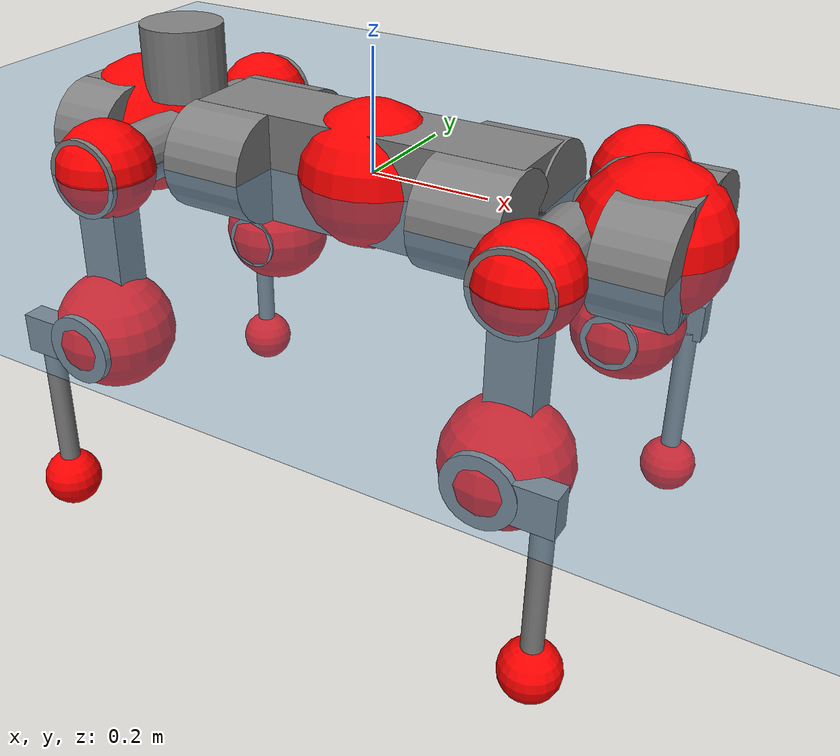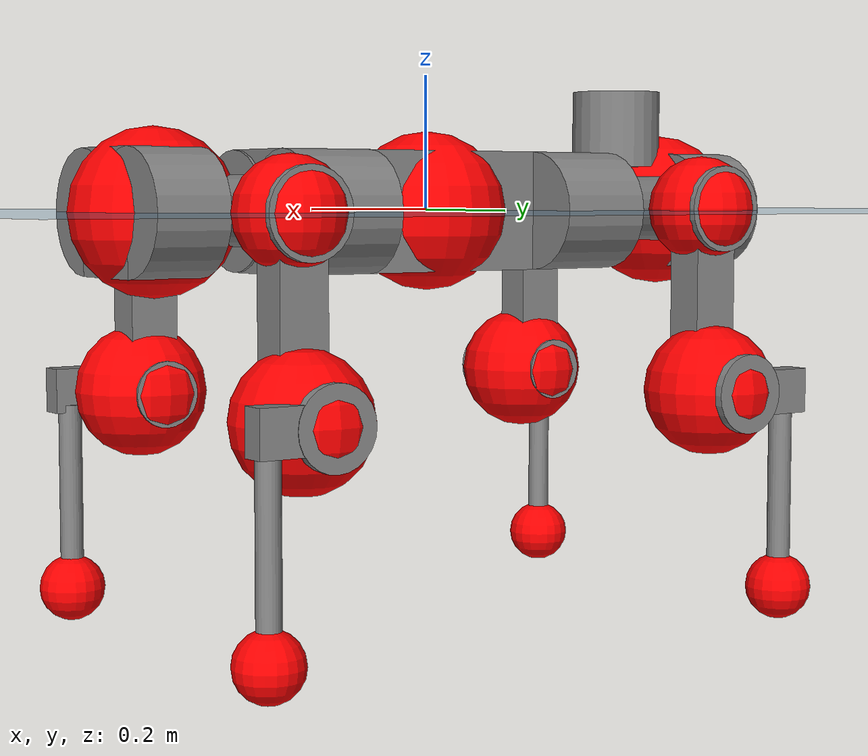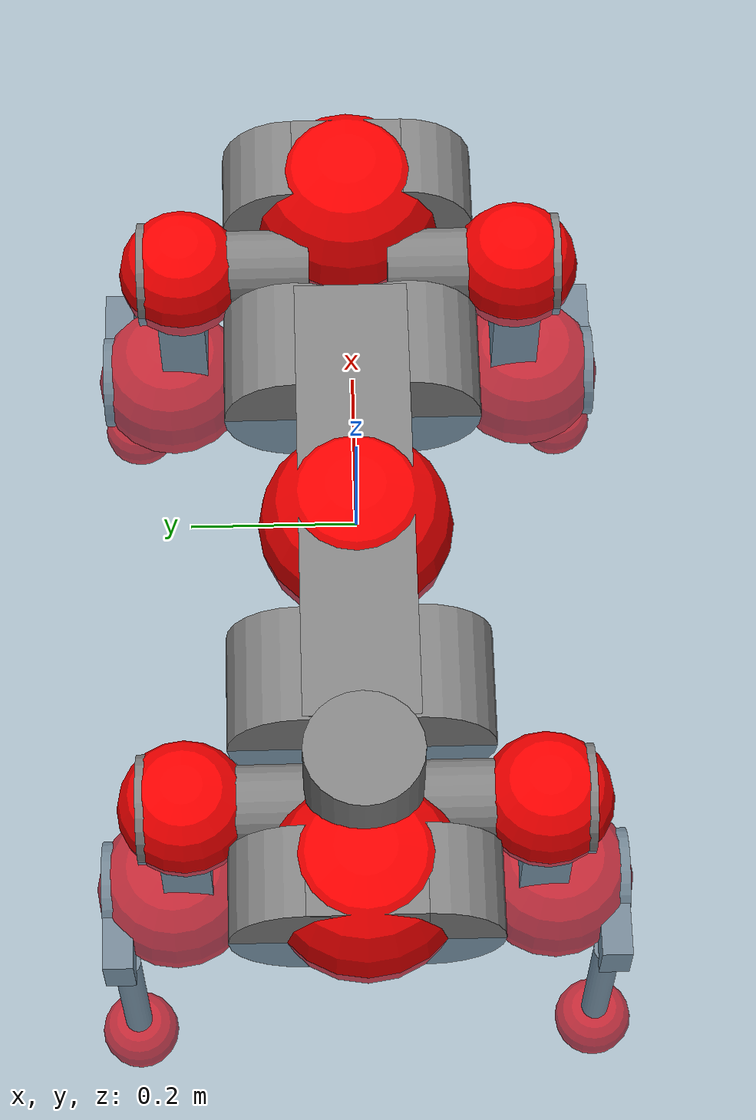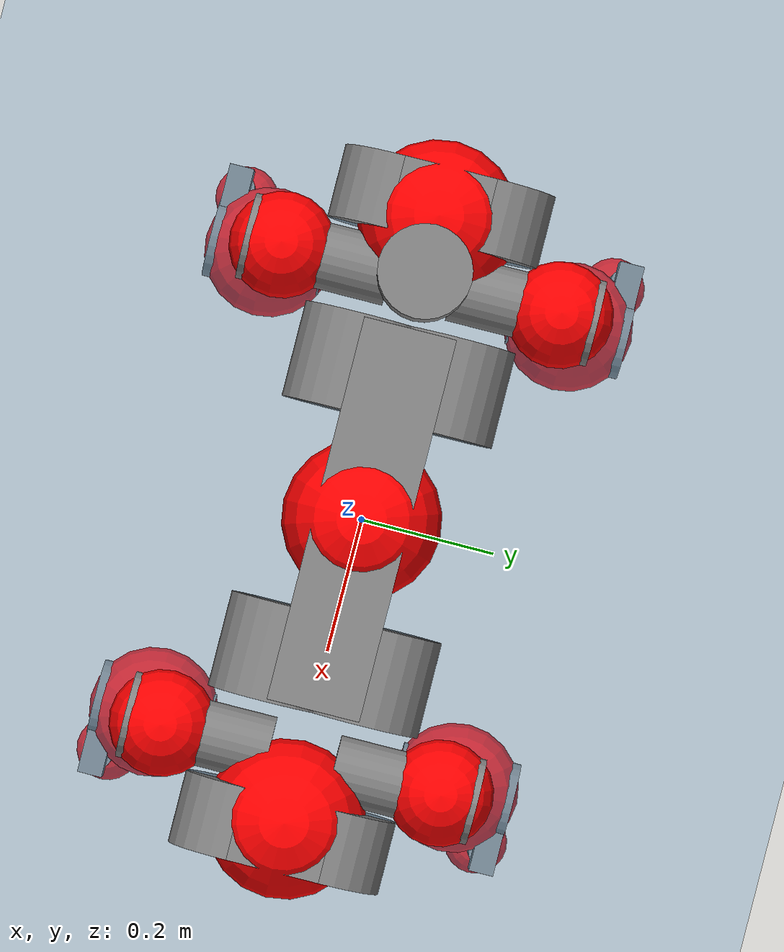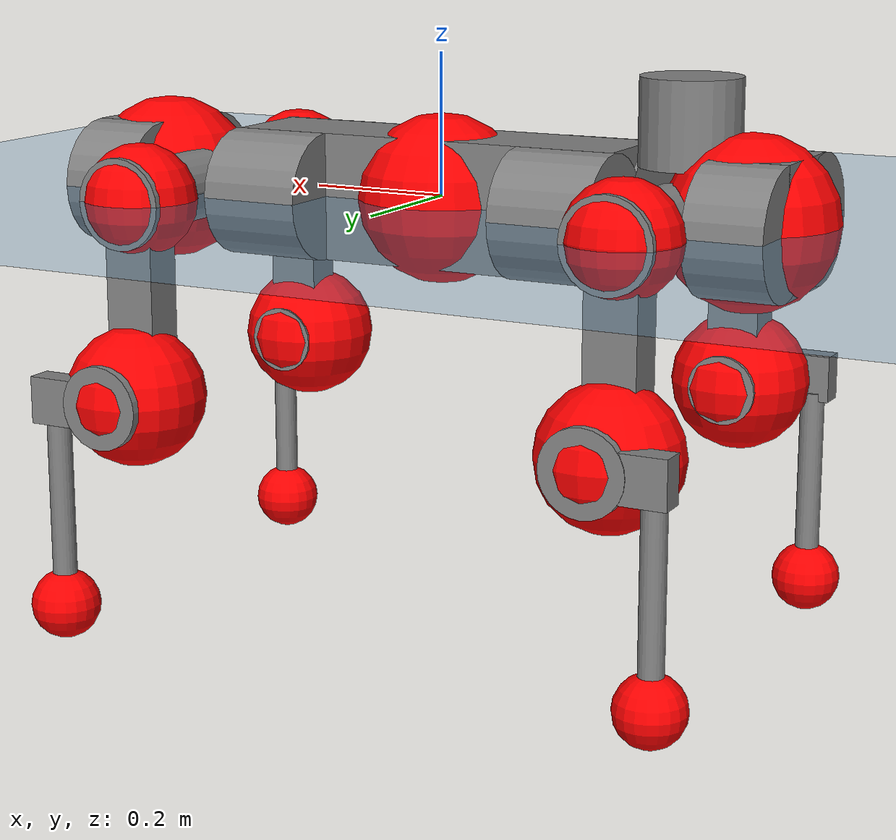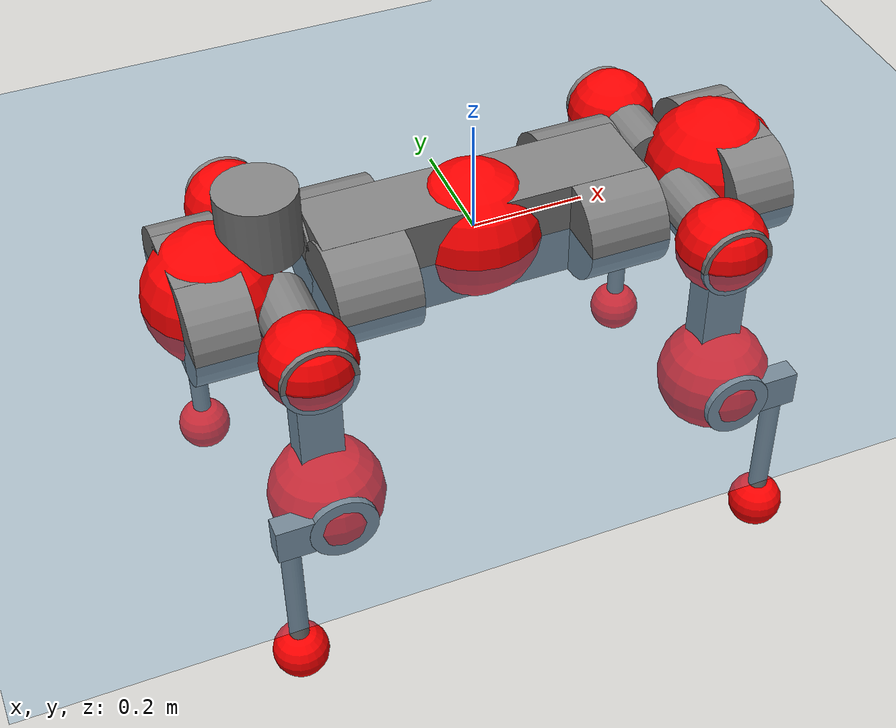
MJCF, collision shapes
<mujoco model="anymal_c">
  <compiler angle="radian" assetdir="assets" balanceinertia="true" inertiafromgeom="false"/>

  <option timestep="0.005" density="1.2" viscosity="2e-05"/>

  <size nkey="1"/>

  <visual>
    <quality shadowsize="8192"/>
    <map shadowclip="0.5"/>
  </visual>

  <default>
    <default class="/">
      <material specular="0" shininess="0.25"/>
      <geom contype="0" conaffinity="0" group="1" solref="-1000 -80"/>
      <site size="0.01 0.005 0.005" group="5"/>
      <general forcelimited="true" forcerange="-80 80" biastype="affine" gainprm="80" biasprm="0 -80 -2"/>
      <default class="anymal_c">
        <joint armature="0.01" damping="0.01" frictionloss="0.1"/>
        <default class="visual">
          <geom type="mesh" group="2"/>
          <default class="visual_zflip"/>
        </default>
        <default class="collision">
          <geom type="cylinder" group="3"/>
          <default class="foot">
            <geom size="0.03 0 0" type="sphere" condim="6" priority="1" friction="0.8 0.02 0.01" solimp="0.015 1 0.03"/>
          </default>
        </default>
      </default>
      <default class="reward_collision_sphere">
        <geom group="5" rgba="1 0 0 1"/>
      </default>
    </default>
  </default>

  <asset>
    <texture type="skybox" colorspace="auto" name="//unnamed_texture_0" builtin="gradient" rgb1="0.95 0.95 0.95" rgb2="0.95 0.95 0.95" width="100" height="600"/>
    <texture type="2d" colorspace="auto" name="texplane" builtin="checker" rgb1="0.345 0.575 0.748" rgb2="0.345 0.575 0.748" markrgb="1 1 1" width="512" height="512"/>
    <texture type="2d" colorspace="linear" name="base" file="base.png"/>
    <texture type="2d" colorspace="linear" name="top_shell" file="top_shell.png"/>
    <texture type="2d" colorspace="linear" name="bottom_shell" file="bottom_shell.png"/>
    <texture type="2d" colorspace="linear" name="remote" file="remote.png"/>
    <texture type="2d" colorspace="linear" name="hatch" file="hatch.png"/>
    <texture type="2d" colorspace="linear" name="handle" file="handle.png"/>
    <texture type="2d" colorspace="linear" name="face" file="face.png"/>
    <texture type="2d" colorspace="linear" name="battery" file="battery.png"/>
    <texture type="2d" colorspace="linear" name="lidar_cage" file="lidar_cage.png"/>
    <texture type="2d" colorspace="linear" name="depth_camera" file="depth_camera.png"/>
    <texture type="2d" colorspace="linear" name="wide_angle_camera" file="wide_angle_camera.png"/>
    <texture type="2d" colorspace="linear" name="lidar" file="lidar.png"/>
    <texture type="2d" colorspace="linear" name="drive" file="drive.png"/>
    <texture type="2d" colorspace="linear" name="hip_l" file="hip_l.png"/>
    <texture type="2d" colorspace="linear" name="shank_l" file="shank_l.png"/>
    <texture type="2d" colorspace="linear" name="foot" file="foot.png"/>
    <texture type="2d" colorspace="linear" name="thigh" file="thigh.png"/>
    <texture type="2d" colorspace="linear" name="shank_r" file="shank_r.png"/>
    <texture type="2d" colorspace="linear" name="hip_r" file="hip_r.png"/>
    <material name="MatPlane" class="/" texture="texplane" texuniform="true" texrepeat="2 2" specular="0.9" shininess="0.5"/>
    <material name="black_plastic" class="/" rgba="0.007 0.007 0.007 1"/>
    <material name="green" class="/" rgba="0.052 0.178 0.033 1"/>
    <material name="red" class="/" rgba="0.178 0.006 0.005 1"/>
    <material name="yellow" class="/" rgba="0.178 0.119 0.006 1"/>
    <material name="lwl" class="/" rgba="0.8 0.8 0.8 1"/>
    <material name="base" class="/" texture="base"/>
    <material name="top_shell" class="/" texture="top_shell"/>
    <material name="bottom_shell" class="/" texture="bottom_shell"/>
    <material name="hip_l" class="/" texture="hip_l"/>
    <material name="thigh" class="/" texture="thigh"/>
    <material name="shank_l" class="/" texture="shank_l"/>
    <material name="foot" class="/" texture="foot"/>
    <material name="hip_r" class="/" texture="hip_r"/>
    <material name="shank" class="/" texture="shank_r"/>
    <material name="hatch" class="/" texture="hatch"/>
    <material name="remote" class="/" texture="remote"/>
    <material name="handle" class="/" texture="handle"/>
    <material name="face" class="/" texture="face"/>
    <material name="depth_camera" class="/" texture="depth_camera"/>
    <material name="wide_angle_camera" class="/" texture="wide_angle_camera"/>
    <material name="battery" class="/" texture="battery"/>
    <material name="lidar_cage" class="/" texture="lidar_cage"/>
    <material name="lidar" class="/" texture="lidar"/>
    <material name="drive" class="/" texture="drive"/>
    <mesh name="base_0" class="/" file="base_0.obj"/>
    <mesh name="base_1" class="/" file="base_1.obj"/>
    <mesh name="base_2" class="/" file="base_2.obj"/>
    <mesh name="base_3" class="/" file="base_3.obj"/>
    <mesh name="base_4" class="/" file="base_4.obj"/>
    <mesh name="base_5" class="/" file="base_5.obj"/>
    <mesh name="top_shell" class="/" file="top_shell.obj"/>
    <mesh name="bottom_shell" class="/" file="bottom_shell.obj"/>
    <mesh name="remote" class="/" file="remote.obj"/>
    <mesh name="handle" class="/" file="handle.obj"/>
    <mesh name="face" class="/" file="face.obj"/>
    <mesh name="wide_angle_camera" class="/" file="wide_angle_camera.obj"/>
    <mesh name="depth_camera" class="/" file="depth_camera.obj"/>
    <mesh name="battery" class="/" file="battery.obj"/>
    <mesh name="lidar_cage" class="/" file="lidar_cage.obj"/>
    <mesh name="lidar" class="/" file="lidar.obj"/>
    <mesh name="drive" class="/" file="drive.obj"/>
    <mesh name="hip_l" class="/" file="hip_l.obj"/>
    <mesh name="thigh" class="/" file="thigh.obj"/>
    <mesh name="shank_l" class="/" file="shank_l.obj"/>
    <mesh name="foot" class="/" file="foot.obj"/>
    <mesh name="hip_r" class="/" file="hip_r.obj"/>
    <mesh name="hatch" class="/" file="hatch.obj"/>
    <mesh name="shank_r" class="/" file="shank_r.obj"/>
  </asset>

  <worldbody>
    <geom name="floor" class="/" size="100 100 0.125" type="plane" group="0" material="MatPlane"/>
    <light name="toplight_shadow" class="/" pos="0 0 5" dir="0.0990148 0.0990148 -0.990148" type="directional" ambient="0.04 0.04 0.04" diffuse="0.55 0.55 0.55" specular="0.12 0.12 0.12"/>
    <light name="toplight_fill" class="/" pos="0 0 5" dir="0.0990148 0.0990148 -0.990148" type="directional" castshadow="false" ambient="0.04 0.04 0.04" diffuse="0.3 0.3 0.3" specular="0.08 0.08 0.08"/>
    <body name="trunk" childclass="anymal_c" pos="-0.00104925 0.000452405 -0.00188891" quat="0.999999 -0.000434449 0.000141273 0.00104744">
      <inertial pos="0.00180397 0.00264461 0.0443712" quat="0.500364 0.493316 0.496649 0.509524" mass="18.2573" diaginertia="0.698581 0.644457 0.176797"/>
      <joint name="//unnamed_joint_0" type="free" armature="0" damping="0" frictionloss="0"/>
      <geom name="//unnamed_geom_1" class="visual" material="green" mesh="base_0"/>
      <geom name="//unnamed_geom_2" class="visual" material="yellow" mesh="base_1"/>
      <geom name="//unnamed_geom_3" class="visual" material="red" mesh="base_2"/>
      <geom name="//unnamed_geom_4" class="visual" material="black_plastic" mesh="base_3"/>
      <geom name="//unnamed_geom_5" class="visual" material="lwl" mesh="base_4"/>
      <geom name="//unnamed_geom_6" class="visual" material="base" mesh="base_5"/>
      <geom name="trunk_1" class="collision" size="0.287027 0.0692824 0.0890774" type="box"/>
      <geom name="trunk_2" class="collision" size="0.0890774 0.0717568" pos="0.219906 0.0701011 0" quat="0.707107 0 0.707107 0"/>
      <geom name="trunk_3" class="collision" size="0.0890774 0.0717568" pos="-0.219906 0.0701011 0" quat="0.707107 0 0.707107 0"/>
      <geom name="trunk_4" class="collision" size="0.0890774 0.0717568" pos="0.219906 -0.0701011 0" quat="0.707107 0 0.707107 0"/>
      <geom name="trunk_5" class="collision" size="0.0890774 0.0717568" pos="-0.219906 -0.0701011 0" quat="0.707107 0 0.707107 0"/>
      <geom name="//unnamed_geom_12" class="visual" material="top_shell" mesh="top_shell"/>
      <geom name="//unnamed_geom_13" class="visual" material="bottom_shell" mesh="bottom_shell"/>
      <geom name="//unnamed_geom_14" class="visual" material="remote" mesh="remote"/>
      <geom name="//unnamed_geom_15" class="visual" material="handle" mesh="handle"/>
      <geom name="//unnamed_geom_16" class="visual" pos="0.419084 0 0" quat="1 0 0 0" material="face" mesh="face"/>
      <geom name="trunk_6" class="collision" size="0.0544362 0.0692824 0.0890774" pos="0.474693 0 0" type="box"/>
      <geom name="//unnamed_geom_18" class="collision" size="0.0890774 0.0544362" pos="0.474693 0.0701011 0" quat="0.707107 0 0.707107 0"/>
      <geom name="//unnamed_geom_19" class="collision" size="0.0890774 0.0544362" pos="0.474693 -0.0701011 0" quat="0.707107 0 0.707107 0"/>
      <geom name="//unnamed_geom_20" class="visual" pos="0.466754 0 -0.0275241" quat="0.965926 0 0.258819 0" material="depth_camera" mesh="depth_camera"/>
      <geom name="//unnamed_geom_21" class="visual" pos="0.518674 0 0.0143224" material="wide_angle_camera" mesh="wide_angle_camera"/>
      <geom name="//unnamed_geom_22" class="visual_zflip" pos="-0.419084 0 0" quat="0 0 0 1" material="face" mesh="face"/>
      <geom name="trunk_7" class="collision" size="0.0544362 0.0692824 0.0890774" pos="-0.474693 0 0" quat="0 0 0 1" type="box"/>
      <geom name="//unnamed_geom_24" class="collision" size="0.0890774 0.0544362" pos="-0.474693 -0.0701011 0" quat="0 -0.707107 0 0.707107"/>
      <geom name="//unnamed_geom_25" class="collision" size="0.0890774 0.0544362" pos="-0.474693 0.0701011 0" quat="0 -0.707107 0 0.707107"/>
      <geom name="//unnamed_geom_26" class="visual" pos="-0.466754 0 -0.0275241" quat="0 -0.258819 0 0.965926" material="depth_camera" mesh="depth_camera"/>
      <geom name="//unnamed_geom_27" class="visual_zflip" pos="-0.518674 0 0.0143224" quat="0 0 0 1" material="wide_angle_camera" mesh="wide_angle_camera"/>
      <geom name="//unnamed_geom_28" class="visual" material="battery" mesh="battery"/>
      <geom name="//unnamed_geom_29" class="visual" pos="0 0.0764419 0.0282062" quat="0.683013 -0.183013 0.183013 0.683013" material="depth_camera" mesh="depth_camera"/>
      <geom name="//unnamed_geom_30" class="visual" pos="0 -0.0764419 0.0282062" quat="0.683013 0.183013 0.183013 -0.683013" material="depth_camera" mesh="depth_camera"/>
      <geom name="//unnamed_geom_31" class="visual" pos="-0.368026 0 0.0703206" quat="1 0 0 0" material="lidar_cage" mesh="lidar_cage"/>
      <geom name="trunk_8" class="collision" size="0.0692824 0.0593849" pos="-0.368026 0 0.127725"/>
      <geom name="//unnamed_geom_33" class="visual" pos="-0.368026 -3.77804e-06 0.136049" quat="0.707107 0 0 -0.707107" material="lidar" mesh="lidar"/>
      <geom name="//unnamed_geom_34" class="visual" pos="0.303217 0.104134 7.71096e-10" quat="0.258819 0.965926 0 0" material="drive" mesh="drive"/>
      <geom name="//unnamed_geom_35" class="visual" pos="0.303217 -0.104134 -7.71096e-10" quat="0.258819 -0.965926 0 0" material="drive" mesh="drive"/>
      <geom name="//unnamed_geom_36" class="visual" pos="-0.303217 0.104134 -7.71096e-10" quat="0 0 0.965926 -0.258819" material="drive" mesh="drive"/>
      <geom name="//unnamed_geom_37" class="visual" pos="-0.303217 -0.104134 7.71096e-10" quat="0 0 -0.965926 -0.258819" material="drive" mesh="drive"/>
      <geom name="//unnamed_geom_38" class="visual" pos="0.117283 0 0.0698422" quat="1 0 0 0" material="hatch" mesh="hatch"/>
      <geom name="//unnamed_geom_39" class="reward_collision_sphere" size="0.11877"/>
      <geom name="//unnamed_geom_40" class="reward_collision_sphere" size="0.11877" pos="0.454977 0 0"/>
      <geom name="//unnamed_geom_41" class="reward_collision_sphere" size="0.11877" pos="-0.454977 0 0"/>
      <site name="imu" pos="0.248466 0.0211276 0.030232" size="0.00989749"/>
      <camera name="track" pos="0 -2.00289 0" quat="0.707107 0.707107 0 0" mode="trackcom"/>
      <camera name="ego_camera" pos="0.454977 0 -0.0382697" quat="-0.5 -0.5 0.5 0.5"/>
      <body name="LF_HIP" pos="0.303847 0.106015 0.00261943" quat="0.258966 0.965886 -4.59547e-05 0.000137989">
        <inertial pos="0.0548838 -0.0144283 -0.00968603" quat="-0.124547 0.708594 -0.144592 0.67932" mass="2.62023" diaginertia="0.00620611 0.00477381 0.00255076"/>
        <joint name="LF_HAA" pos="0 0 0" axis="0.999933 0.0100433 -0.00578603" range="-0.729751 0.535882" armature="0.0099303" damping="0" frictionloss="0.110435"/>
        <geom name="//unnamed_geom_42" class="visual" pos="0 4.53601e-05 -7.45036e-06" quat="0.258819 -0.965926 0 0" material="hip_l" mesh="hip_l"/>
        <geom name="//unnamed_geom_43" class="visual" pos="0.0605625 -0.0732419 -0.0419556" quat="0.183013 -0.683013 0.683013 0.183013" material="drive" mesh="drive"/>
        <geom name="//unnamed_geom_44" class="collision" size="0.0494874 0.0692824" pos="0.0605625 -0.0119771 -0.00660631" quat="-0.353553 -0.612372 0.612372 -0.353553"/>
        <body name="LF_THIGH" pos="0.0581248 -0.0705914 -0.0379181" quat="0.182988 -0.682961 0.683041 0.183123">
          <inertial pos="0.031439 0.000684024 -0.234478" quat="0.993236 -0.00552823 -0.0776479 0.0861485" mass="2.87241" diaginertia="0.0307293 0.0291517 0.00313246"/>
          <joint name="LF_HFE" pos="0 0 0" axis="0.999994 0.00295413 -0.00174152" range="-3.19503 3.13771" armature="0.00864242" damping="0.021709" frictionloss="0.0984342"/>
          <geom name="//unnamed_geom_45" class="visual" pos="0.000191329 3.0149e-07 0" quat="0.707107 0 0 -0.707107" material="thigh" mesh="thigh"/>
          <geom name="//unnamed_geom_46" class="collision" size="0.0643337 0.03959" pos="0.0404424 0 0" quat="0.5 0.5 -0.5 -0.5"/>
          <geom name="//unnamed_geom_47" class="collision" size="0.0371156 0.0296925 0.139865" pos="0.0303318 0 -0.135201" quat="0.707107 0 0 -0.707107" type="box"/>
          <geom name="//unnamed_geom_48" class="visual" pos="0.101409 0 -0.272672" quat="1 0 0 0" material="drive" mesh="drive"/>
          <geom name="//unnamed_geom_49" class="collision" size="0.0494874 0.0692824" pos="0.0306351 0 -0.272672" quat="0.707107 0 0.707107 0"/>
          <geom name="//unnamed_geom_50" class="reward_collision_sphere" size="0.0791799" pos="0.0252765 0 0"/>
          <body name="LF_SHANK" pos="0.101683 0.000517499 -0.274" quat="1 -1.67038e-05 5.0898e-05 1.89255e-06">
            <inertial pos="0.00418699 -0.0634834 -0.0774938" quat="0.993117 -0.114474 -0.00269453 -0.0246504" mass="0.575822" diaginertia="0.0104464 0.00920753 0.000894011"/>
            <joint name="LF_KFE" pos="0 0 0" axis="0.999996 0.00022033 -0.00285175" range="-3.16903 3.18993" armature="0.00988422" damping="0.0109236" frictionloss="0.107435"/>
            <geom name="//unnamed_geom_51" class="visual" pos="6.23883e-05 0.000332658 0" quat="0.707107 0 0 -0.707107" material="shank_l" mesh="shank_l"/>
            <geom name="LF_kfe_act" class="collision" size="0.0593849 0.019795" pos="0.0202212 0 0" quat="0.5 0.5 -0.5 -0.5"/>
            <geom name="//unnamed_geom_53" class="collision" size="0.0569096 0.033404 0.0188052" pos="0.0202212 -0.057582 0" quat="0.5 0.5 -0.5 -0.5" type="box"/>
            <geom name="//unnamed_geom_54" class="visual" pos="0.0131943 -0.0879698 -0.32335" quat="0.382683 0 0 -0.92388" material="foot" mesh="foot"/>
            <geom name="LF_calf" class="collision" size="0.0173206 0.139804" pos="0.0131943 -0.088077 -0.161675" quat="0.707107 0 0 -0.707107"/>
            <geom name="LF_foot" class="foot" size="0.0292256" pos="0.0131943 -0.088077 -0.301824" quat="0.707107 0 0 -0.707107"/>
            <geom name="//unnamed_geom_57" class="reward_collision_sphere" size="0.0989749" pos="-0.050553 0 0"/>
            <geom name="//unnamed_geom_58" class="reward_collision_sphere" size="0.0494874" pos="0.0131943 -0.088077 -0.301824"/>
            <site name="LF_foot" class="foot" pos="0.0131943 -0.088077 -0.301824" quat="0.707107 0 0 -0.707107" size="0.00989749"/>
          </body>
        </body>
      </body>
      <body name="RF_HIP" pos="0.301527 -0.103667 0.00238243" quat="0.258161 -0.966102 0.00013314 2.40909e-05">
        <inertial pos="0.0560031 0.0155623 -0.0086524" quat="0.141947 0.676817 0.13347 0.709898" mass="2.73363" diaginertia="0.00608188 0.00490067 0.00258334"/>
        <joint name="RF_HAA" pos="0 0 0" axis="0.999955 -0.00120366 -0.00939086" range="-0.531506 0.678002" armature="0.0099363" damping="0" frictionloss="0.112493"/>
        <geom name="//unnamed_geom_59" class="visual" pos="0 -4.53597e-05 -7.45034e-06" quat="0.258819 0.965926 0 0" material="hip_r" mesh="hip_r"/>
        <geom name="//unnamed_geom_60" class="visual" pos="0.0605625 0.0732419 -0.0419556" quat="0.183013 0.683013 0.683013 -0.183013" material="drive" mesh="drive"/>
        <geom name="//unnamed_geom_61" class="collision" size="0.0494874 0.0692824" pos="0.0605625 0.0119771 -0.00660631" quat="-0.353553 0.612372 0.612372 0.353553"/>
        <body name="RF_THIGH" pos="0.0610552 0.0700535 -0.0410326" quat="0.183544 0.68286 0.683153 -0.182526">
          <inertial pos="0.0292476 0.000510636 -0.235208" quat="0.992896 -0.00493389 -0.0810224 0.0869991" mass="3.09408" diaginertia="0.0319778 0.0291795 0.00344277"/>
          <joint name="RF_HFE" pos="0 0 0" axis="1 -0.000667721 0.000354867" stiffness="0.0142738" range="-3.14693 3.08793" armature="0.00894341" damping="0.00553344" frictionloss="0.0851299"/>
          <geom name="//unnamed_geom_62" class="visual" pos="0.000191329 3.0149e-07 0" quat="0.707107 0 0 -0.707107" material="thigh" mesh="thigh"/>
          <geom name="//unnamed_geom_63" class="collision" size="0.0643337 0.03959" pos="0.0404424 0 0" quat="0.5 0.5 0.5 0.5"/>
          <geom name="//unnamed_geom_64" class="collision" size="0.0371156 0.0296925 0.139865" pos="0.0303318 0 -0.135201" quat="0.707107 0 0 0.707107" type="box"/>
          <geom name="//unnamed_geom_65" class="visual" pos="0.101409 0 -0.272672" quat="1 0 0 0" material="drive" mesh="drive"/>
          <geom name="//unnamed_geom_66" class="collision" size="0.0494874 0.0692824" pos="0.0306351 0 -0.272672" quat="0.707107 0 0.707107 0"/>
          <geom name="//unnamed_geom_67" class="reward_collision_sphere" size="0.0791799" pos="0.0252765 0 0"/>
          <body name="RF_SHANK" pos="0.0990575 0.000133184 -0.273296" quat="1 5.19517e-05 -9.18838e-05 -0.000223929">
            <inertial pos="0.00584918 0.0589722 -0.0741223" quat="0.992565 0.118146 -0.00800405 0.0281552" mass="0.559804" diaginertia="0.0105159 0.00932171 0.000841382"/>
            <joint name="RF_KFE" pos="0 0 0" axis="0.999995 0.00247874 -0.00186613" range="-3.14076 3.15764" armature="0.00952959" damping="0" frictionloss="0.0884276"/>
            <geom name="//unnamed_geom_68" class="visual" pos="6.23879e-05 -0.000332657 0" quat="0.707107 0 0 0.707107" material="shank" mesh="shank_r"/>
            <geom name="RF_kfe_act" class="collision" size="0.0593849 0.019795" pos="0.0202212 0 0" quat="0.5 0.5 0.5 0.5"/>
            <geom name="//unnamed_geom_70" class="collision" size="0.0569096 0.033404 0.0188052" pos="0.0202212 0.057582 0" quat="0.5 0.5 0.5 0.5" type="box"/>
            <geom name="//unnamed_geom_71" class="visual" pos="0.0131943 0.0879698 -0.32335" quat="0.382683 0 0 0.92388" material="foot" mesh="foot"/>
            <geom name="RF_calf" class="collision" size="0.0173206 0.139804" pos="0.0131943 0.088077 -0.161675" quat="0.707107 0 0 0.707107"/>
            <geom name="RF_foot" class="foot" size="0.0273082" pos="0.0131943 0.088077 -0.301824" quat="0.707107 0 0 0.707107"/>
            <geom name="//unnamed_geom_74" class="reward_collision_sphere" size="0.0989749" pos="-0.050553 0 0"/>
            <geom name="//unnamed_geom_75" class="reward_collision_sphere" size="0.0494874" pos="0.0131943 0.088077 -0.301824"/>
            <site name="RF_foot" class="foot" pos="0.0131943 0.088077 -0.301824" quat="0.707107 0 0 0.707107" size="0.00989749"/>
          </body>
        </body>
      </body>
      <body name="LH_HIP" pos="-0.303159 0.102035 0.00324364" quat="-3.62937e-05 -0.000358346 0.966014 -0.258491">
        <inertial pos="0.0568691 0.0127171 -0.00983467" quat="0.13937 0.680089 0.122252 0.709302" mass="2.64501" diaginertia="0.00583701 0.00488854 0.00246394"/>
        <joint name="LH_HAA" pos="0 0 0" axis="0.999904 -0.0100601 0.00949948" range="-0.544918 0.768642" armature="0.0111844" damping="0.0047057" frictionloss="0.099124"/>
        <geom name="//unnamed_geom_76" class="visual" pos="0 -4.53597e-05 -7.45034e-06" quat="-0.258819 -0.965926 0 0" material="hip_r" mesh="hip_r"/>
        <geom name="//unnamed_geom_77" class="visual" pos="0.0605625 0.0732419 -0.0419556" quat="0.183013 0.683013 0.683013 -0.183013" material="drive" mesh="drive"/>
        <geom name="//unnamed_geom_78" class="collision" size="0.0494874 0.0692824" pos="0.0605625 0.0119771 -0.00660631" quat="-0.353553 0.612372 0.612372 0.353553"/>
        <body name="LH_THIGH" pos="0.0603439 0.0703076 -0.0400582" quat="0.184302 0.683261 0.682613 -0.182282">
          <inertial pos="0.0327388 -0.00296684 -0.236498" quat="0.99272 -0.00505739 -0.0807652 0.0892114" mass="3.04403" diaginertia="0.0333978 0.0302198 0.00352768"/>
          <joint name="LH_HFE" pos="0 0 0" axis="0.999952 0.00209763 0.00959459" stiffness="0.00752847" range="-3.19748 3.13164" armature="0.0098835" damping="0.00227755" frictionloss="0.10837"/>
          <geom name="//unnamed_geom_79" class="visual" pos="0.000191329 3.0149e-07 0" quat="0.707107 0 0 -0.707107" material="thigh" mesh="thigh"/>
          <geom name="//unnamed_geom_80" class="collision" size="0.0643337 0.03959" pos="0.0404424 0 0" quat="0.5 0.5 -0.5 -0.5"/>
          <geom name="//unnamed_geom_81" class="collision" size="0.0371156 0.0296925 0.139865" pos="0.0303318 0 -0.135201" quat="0.707107 0 0 -0.707107" type="box"/>
          <geom name="//unnamed_geom_82" class="visual" pos="0.101409 0 -0.272672" quat="1 0 0 0" material="drive" mesh="drive"/>
          <geom name="//unnamed_geom_83" class="collision" size="0.0494874 0.0692824" pos="0.0306351 0 -0.272672" quat="0.707107 0 0.707107 0"/>
          <geom name="//unnamed_geom_84" class="reward_collision_sphere" size="0.0791799" pos="0.0252765 0 0"/>
          <body name="LH_SHANK" pos="0.0992239 -0.000978386 -0.274354" quat="0.999999 0.00113125 0.000795613 -0.000555879">
            <inertial pos="0.00353267 0.0639397 -0.0788001" quat="0.992942 0.117094 -0.00918294 0.016473" mass="0.546721" diaginertia="0.0103226 0.00872344 0.000884078"/>
            <joint name="LH_KFE" pos="0 0 0" axis="0.999999 -0.00143908 -0.000726469" range="-3.1614 3.11302" armature="0.011116" damping="0.00189692" frictionloss="0.0987892"/>
            <geom name="//unnamed_geom_85" class="visual" pos="6.23879e-05 -0.000332657 0" quat="-0.707107 0 0 -0.707107" material="shank" mesh="shank_r"/>
            <geom name="LH_kfe_act" class="collision" size="0.0593849 0.019795" pos="0.0202212 0 0" quat="0.5 0.5 -0.5 -0.5"/>
            <geom name="//unnamed_geom_87" class="collision" size="0.0569096 0.033404 0.0188052" pos="0.0202212 0.057582 0" quat="0.5 0.5 -0.5 -0.5" type="box"/>
            <geom name="//unnamed_geom_88" class="visual" pos="0.0131943 0.0879698 -0.32335" quat="-0.382683 0 0 -0.92388" material="foot" mesh="foot"/>
            <geom name="LH_calf" class="collision" size="0.0173206 0.139804" pos="0.0131943 0.088077 -0.161675" quat="0.707107 0 0 -0.707107"/>
            <geom name="LH_foot" class="foot" size="0.0322526" pos="0.0131943 0.088077 -0.301824" quat="0.707107 0 0 -0.707107"/>
            <geom name="//unnamed_geom_91" class="reward_collision_sphere" size="0.0989749" pos="-0.050553 0 0"/>
            <geom name="//unnamed_geom_92" class="reward_collision_sphere" size="0.0494874" pos="0.0131943 0.088077 -0.301824"/>
            <site name="LH_foot" class="foot" pos="0.0131943 0.088077 -0.301824" quat="0.707107 0 0 -0.707107" size="0.00989749"/>
          </body>
        </body>
      </body>
      <body name="RH_HIP" pos="-0.301668 -0.104681 0.00314733" quat="-0.000215043 -0.000201104 -0.966018 -0.258473">
        <inertial pos="0.054514 -0.0180003 -0.00822378" quat="-0.118775 0.715517 -0.132266 0.675598" mass="2.71496" diaginertia="0.00650636 0.00508308 0.00277892"/>
        <joint name="RH_HAA" pos="0 0 0" axis="0.999975 -0.0043282 0.0056086" range="-0.765961 0.488" armature="0.00988942" damping="0.0106413" frictionloss="0.106342"/>
        <geom name="//unnamed_geom_93" class="visual" pos="0 4.53601e-05 -7.45036e-06" quat="-0.258819 0.965926 0 0" material="hip_l" mesh="hip_l"/>
        <geom name="//unnamed_geom_94" class="visual" pos="0.0605625 -0.0732419 -0.0419556" quat="-0.183013 0.683013 -0.683013 -0.183013" material="drive" mesh="drive"/>
        <geom name="//unnamed_geom_95" class="collision" size="0.0494874 0.0692824" pos="0.0605625 -0.0119771 -0.00660631" quat="0.353553 0.612372 -0.612372 0.353553"/>
        <body name="RH_THIGH" pos="0.0613398 -0.0715085 -0.0425177" quat="-0.182908 0.683275 -0.682794 -0.182952">
          <inertial pos="0.0331729 -0.00243108 -0.23748" quat="0.994046 -0.0112345 -0.0811458 0.0718514" mass="2.89297" diaginertia="0.0327423 0.0296639 0.00331973"/>
          <joint name="RH_HFE" pos="0 0 0" axis="0.999955 0.00304513 -0.00900802" range="-3.13203 3.08799" armature="0.00999679" damping="0" frictionloss="0.098207"/>
          <geom name="//unnamed_geom_96" class="visual" pos="0.000191329 3.0149e-07 0" quat="0.707107 0 0 -0.707107" material="thigh" mesh="thigh"/>
          <geom name="//unnamed_geom_97" class="collision" size="0.0643337 0.03959" pos="0.0404424 0 0" quat="0.5 0.5 0.5 0.5"/>
          <geom name="//unnamed_geom_98" class="collision" size="0.0371156 0.0296925 0.139865" pos="0.0303318 0 -0.135201" quat="0.707107 0 0 0.707107" type="box"/>
          <geom name="//unnamed_geom_99" class="visual" pos="0.101409 0 -0.272672" quat="1 0 0 0" material="drive" mesh="drive"/>
          <geom name="//unnamed_geom_100" class="collision" size="0.0494874 0.0692824" pos="0.0306351 0 -0.272672" quat="0.707107 0 0.707107 0"/>
          <geom name="//unnamed_geom_101" class="reward_collision_sphere" size="0.0791799" pos="0.0252765 0 0"/>
          <body name="RH_SHANK" pos="0.0994634 0.0033489 -0.274859" quat="1 0.000657537 -4.38519e-05 0.000130287">
            <inertial pos="0.00653302 -0.0611617 -0.0775588" quat="0.991625 -0.127212 0.000384196 -0.0222723" mass="0.593517" diaginertia="0.0112105 0.00988989 0.000900493"/>
            <joint name="RH_KFE" pos="0 0 0" axis="0.999962 -0.0074668 0.00448182" range="-3.07753 3.13587" armature="0.0101519" damping="0" frictionloss="0.0975956"/>
            <geom name="//unnamed_geom_102" class="visual" pos="6.23883e-05 0.000332658 0" quat="0.707107 0 0 -0.707107" material="shank_l" mesh="shank_l"/>
            <geom name="RH_kfe_act" class="collision" size="0.0593849 0.019795" pos="0.0202212 0 0" quat="0.5 0.5 0.5 0.5"/>
            <geom name="//unnamed_geom_104" class="collision" size="0.0569096 0.033404 0.0188052" pos="0.0202212 -0.057582 0" quat="0.5 0.5 0.5 0.5" type="box"/>
            <geom name="//unnamed_geom_105" class="visual" pos="0.0131943 -0.0879698 -0.32335" quat="0.382683 0 0 -0.92388" material="foot" mesh="foot"/>
            <geom name="RH_calf" class="collision" size="0.0173206 0.139804" pos="0.0131943 -0.088077 -0.161675" quat="0.707107 0 0 0.707107"/>
            <geom name="RH_foot" class="foot" size="0.0256871" pos="0.0131943 -0.088077 -0.301824" quat="0.707107 0 0 0.707107"/>
            <geom name="//unnamed_geom_108" class="reward_collision_sphere" size="0.0989749" pos="-0.050553 0 0"/>
            <geom name="//unnamed_geom_109" class="reward_collision_sphere" size="0.0494874" pos="0.0131943 -0.088077 -0.301824"/>
            <site name="RH_foot" class="foot" pos="0.0131943 -0.088077 -0.301824" quat="0.707107 0 0 0.707107" size="0.00989749"/>
          </body>
        </body>
      </body>
    </body>
  </worldbody>

  <contact>
    <pair class="/" geom1="floor" geom2="LF_foot" name="//unnamed_contact_0"/>
    <pair class="/" geom1="floor" geom2="RF_foot" name="//unnamed_contact_1"/>
    <pair class="/" geom1="floor" geom2="LH_foot" name="//unnamed_contact_2"/>
    <pair class="/" geom1="floor" geom2="RH_foot" name="//unnamed_contact_3"/>
  </contact>

  <actuator>
    <general name="LF_HAA" class="/" joint="LF_HAA" forcerange="-78.1637 78.1637" gainprm="79.2567" biasprm="0 -79.2567 -1.80204"/>
    <general name="LF_HFE" class="/" joint="LF_HFE" forcerange="-77.7136 77.7136" gainprm="79.2567" biasprm="0 -79.2567 -1.80204"/>
    <general name="LF_KFE" class="/" joint="LF_KFE" forcerange="-87.005 87.005" gainprm="79.2567" biasprm="0 -79.2567 -1.80204"/>
    <general name="RF_HAA" class="/" joint="RF_HAA" forcerange="-82.6422 82.6422" gainprm="79.2567" biasprm="0 -79.2567 -1.80204"/>
    <general name="RF_HFE" class="/" joint="RF_HFE" forcerange="-88.7126 88.7126" gainprm="79.2567" biasprm="0 -79.2567 -1.80204"/>
    <general name="RF_KFE" class="/" joint="RF_KFE" forcerange="-77.3568 77.3568" gainprm="79.2567" biasprm="0 -79.2567 -1.80204"/>
    <general name="LH_HAA" class="/" joint="LH_HAA" forcerange="-78.1259 78.1259" gainprm="79.2567" biasprm="0 -79.2567 -1.80204"/>
    <general name="LH_HFE" class="/" joint="LH_HFE" forcerange="-73.5523 73.5523" gainprm="79.2567" biasprm="0 -79.2567 -1.80204"/>
    <general name="LH_KFE" class="/" joint="LH_KFE" forcerange="-86.8399 86.8399" gainprm="79.2567" biasprm="0 -79.2567 -1.80204"/>
    <general name="RH_HAA" class="/" joint="RH_HAA" forcerange="-79.7136 79.7136" gainprm="79.2567" biasprm="0 -79.2567 -1.80204"/>
    <general name="RH_HFE" class="/" joint="RH_HFE" forcerange="-76.6502 76.6502" gainprm="79.2567" biasprm="0 -79.2567 -1.80204"/>
    <general name="RH_KFE" class="/" joint="RH_KFE" forcerange="-87.232 87.232" gainprm="79.2567" biasprm="0 -79.2567 -1.80204"/>
  </actuator>

  <sensor>
    <gyro site="imu" name="imu_angular_velocity"/>
    <velocimeter site="imu" name="imu_linear_velocity"/>
    <framelinvel objtype="site" objname="LF_foot" name="LF_foot_global_linear_velocity"/>
    <framelinvel objtype="site" objname="RF_foot" name="RF_foot_global_linear_velocity"/>
    <framelinvel objtype="site" objname="LH_foot" name="LH_foot_global_linear_velocity"/>
    <framelinvel objtype="site" objname="RH_foot" name="RH_foot_global_linear_velocity"/>
  </sensor>

  <keyframe>
    <key name="home" qpos="0 0 0.55 1 0 0 0 0 0.4 -0.8 0 -0.4 0.8 0 -0.4 0.8 0 0.4 -0.8"/>
  </keyframe>
</mujoco>
